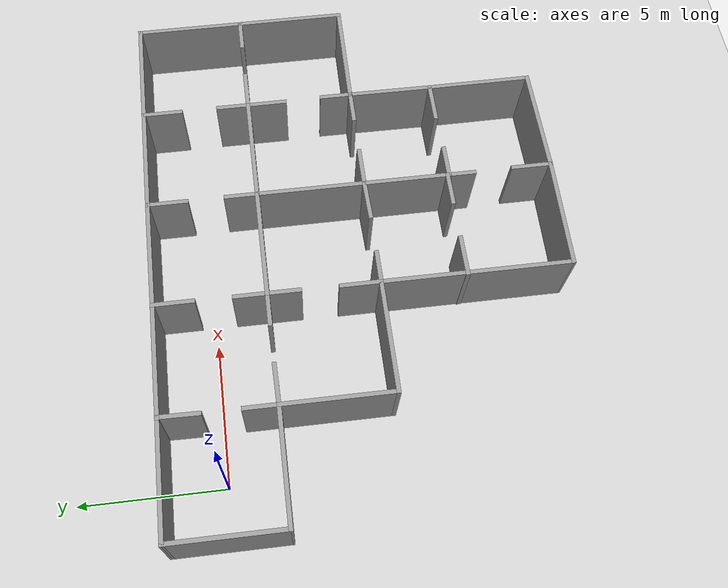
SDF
<sdf version="1.6">
 <world name="default">
  <light name="sun" type="directional">
   <pose>0 0 10 0 -0 0</pose>
   <diffuse>0.8 0.8 0.8 1</diffuse>
   <specular>0.2 0.2 0.2 1</specular>
   <attenuation>
    <range>1000</range>
    <constant>0.9</constant>
    <linear>0.01</linear>
    <quadratic>0.001</quadratic>
   </attenuation>
   <direction>-0.5 0.1 -0.9</direction>
  </light>
  <model name="ground_plane">
   <static>1</static>
   <link name="link">
    <collision name="collision">
     <geometry><plane><normal>0 0 1</normal><size>100 100</size></plane></geometry>
     <surface>
      <contact><collide_bitmask>65535</collide_bitmask></contact>
      <friction><ode><mu>100</mu><mu2>50</mu2></ode></friction>
     </surface>
    </collision>
    <visual name="visual">
     <cast_shadows>0</cast_shadows>
     <geometry><plane><normal>0 0 1</normal><size>100 100</size></plane></geometry>
     <material>
      <script><uri>file://media/materials/scripts/gazebo.material</uri><name>Gazebo/Grey</name></script>
     </material>
    </visual>
   </link>
  </model>
  <gravity>0 0 -9.8</gravity>
  <magnetic_field>6e-06 2.3e-05 -4.2e-05</magnetic_field>
  <atmosphere type="adiabatic"/>
  <physics name="default_physics" default="0" type="ode">
   <max_step_size>0.001</max_step_size>
   <real_time_factor>1</real_time_factor>
   <real_time_update_rate>600</real_time_update_rate>
  </physics>
  <scene><ambient>0.4 0.4 0.4 1</ambient><background>0.7 0.7 0.7 1</background><shadows>1</shadows></scene>
  <audio><device>default</device></audio>
  <spherical_coordinates>
   <surface_model>EARTH_WGS84</surface_model>
   <latitude_deg>0</latitude_deg>
   <longitude_deg>0</longitude_deg>
   <elevation>0</elevation>
   <heading_deg>0</heading_deg>
  </spherical_coordinates>
  <model name="unfinishedarea">
   <pose>7.69301 -5.2344 0 0 -0 0</pose>
   <link name="Wall_0">
    <collision name="Wall_0_Collision">
     <geometry><box><size>4 0.15 2.5</size></box></geometry>
     <pose>0 0 1.25 0 -0 0</pose>
    </collision>
    <visual name="Wall_0_Visual">
     <pose>0 0 1.25 0 -0 0</pose>
     <geometry><box><size>4 0.15 2.5</size></box></geometry>
     <material>
      <script><uri>file://media/materials/scripts/gazebo.material</uri><name>Gazebo/Grey</name></script>
      <ambient>1 1 1 1</ambient>
     </material>
     <meta><layer>0</layer></meta>
    </visual>
    <pose>-3.83005 7.17401 0 0 -0 0</pose>
   </link>
   <link name="Wall_1">
    <collision name="Wall_1_Collision">
     <geometry><box><size>3.97994 0.15 2.5</size></box></geometry>
     <pose>0 0 1.25 0 -0 0</pose>
    </collision>
    <visual name="Wall_1_Visual">
     <pose>0 0 1.25 0 -0 0</pose>
     <geometry><box><size>3.97994 0.15 2.5</size></box></geometry>
     <material>
      <script><uri>file://media/materials/scripts/gazebo.material</uri><name>Gazebo/Grey</name></script>
      <ambient>1 1 1 1</ambient>
     </material>
     <meta><layer>0</layer></meta>
    </visual>
    <pose>0.030012 7.18407 0 0 -0 0.005252</pose>
   </link>
   <link name="Wall_10">
    <collision name="Wall_10_Collision">
     <geometry><box><size>1.5 0.15 2.5</size></box></geometry>
     <pose>0 0 1.25 0 -0 0</pose>
    </collision>
    <visual name="Wall_10_Visual">
     <pose>0 0 1.25 0 -0 0</pose>
     <geometry><box><size>1.5 0.15 2.5</size></box></geometry>
     <material>
      <script><uri>file://media/materials/scripts/gazebo.material</uri><name>Gazebo/Grey</name></script>
      <ambient>1 1 1 1</ambient>
     </material>
     <meta><layer>0</layer></meta>
    </visual>
    <pose>-1.90505 0.169129 0 0 -0 1.5708</pose>
   </link>
   <link name="Wall_100">
    <collision name="Wall_100_Collision">
     <geometry><box><size>1.5 0.15 2.5</size></box></geometry>
     <pose>0 0 1.25 0 -0 0</pose>
    </collision>
    <visual name="Wall_100_Visual">
     <pose>0 0 1.25 0 -0 0</pose>
     <geometry><box><size>1.5 0.15 2.5</size></box></geometry>
     <material>
      <script><uri>file://media/materials/scripts/gazebo.material</uri><name>Gazebo/Grey</name></script>
      <ambient>1 1 1 1</ambient>
     </material>
     <meta><layer>0</layer></meta>
    </visual>
    <pose>5.11381 -3.4565 0 0 -0 0</pose>
   </link>
   <link name="Wall_12">
    <collision name="Wall_12_Collision">
     <geometry><box><size>1.5 0.15 2.5</size></box></geometry>
     <pose>0 0 1.25 0 -0 0</pose>
    </collision>
    <visual name="Wall_12_Visual">
     <pose>0 0 1.25 0 -0 0</pose>
     <geometry><box><size>1.5 0.15 2.5</size></box></geometry>
     <material>
      <script><uri>file://media/materials/scripts/gazebo.material</uri><name>Gazebo/Grey</name></script>
      <ambient>1 1 1 1</ambient>
     </material>
     <meta><layer>0</layer></meta>
    </visual>
    <pose>-5.08005 3.33407 0 0 -0 0.014898</pose>
   </link>
   <link name="Wall_14">
    <collision name="Wall_14_Collision">
     <geometry><box><size>1.25 0.15 2.5</size></box></geometry>
     <pose>0 0 1.25 0 -0 0</pose>
    </collision>
    <visual name="Wall_14_Visual">
     <pose>0 0 1.25 0 -0 0</pose>
     <geometry><box><size>1.25 0.15 2.5</size></box></geometry>
     <material>
      <script><uri>file://media/materials/scripts/gazebo.material</uri><name>Gazebo/Grey</name></script>
      <ambient>1 1 1 1</ambient>
     </material>
     <meta><layer>0</layer></meta>
    </visual>
    <pose>-5.75504 3.89413 0 0 -0 1.5708</pose>
   </link>
   <link name="Wall_16">
    <collision name="Wall_16_Collision">
     <geometry><box><size>1.48004 0.15 2.5</size></box></geometry>
     <pose>0 0 1.25 0 -0 0</pose>
    </collision>
    <visual name="Wall_16_Visual">
     <pose>0 0 1.25 0 -0 0</pose>
     <geometry><box><size>1.48004 0.15 2.5</size></box></geometry>
     <material>
      <script><uri>file://media/materials/scripts/gazebo.material</uri><name>Gazebo/Grey</name></script>
      <ambient>1 1 1 1</ambient>
     </material>
     <meta><layer>0</layer></meta>
    </visual>
    <pose>-5.74499 6.50907 0 0 -0 -1.58592</pose>
   </link>
   <link name="Wall_2">
    <collision name="Wall_2_Collision">
     <geometry><box><size>3.95977 0.15 2.5</size></box></geometry>
     <pose>0 0 1.25 0 -0 0</pose>
    </collision>
    <visual name="Wall_2_Visual">
     <pose>0 0 1.25 0 -0 0</pose>
     <geometry><box><size>3.95977 0.15 2.5</size></box></geometry>
     <material>
      <script><uri>file://media/materials/scripts/gazebo.material</uri><name>Gazebo/Grey</name></script>
      <ambient>1 1 1 1</ambient>
     </material>
     <meta><layer>0</layer></meta>
    </visual>
    <pose>3.84984 7.19413 0 0 -0 0</pose>
   </link>
   <link name="Wall_28">
    <collision name="Wall_28_Collision">
     <geometry><box><size>1.5 0.15 2.5</size></box></geometry>
     <pose>0 0 1.25 0 -0 0</pose>
    </collision>
    <visual name="Wall_28_Visual">
     <pose>0 0 1.25 0 -0 0</pose>
     <geometry><box><size>1.5 0.15 2.5</size></box></geometry>
     <material>
      <script><uri>file://media/materials/scripts/gazebo.material</uri><name>Gazebo/Grey</name></script>
      <ambient>1 1 1 1</ambient>
     </material>
     <meta><layer>0</layer></meta>
    </visual>
    <pose>-1.88493 6.49901 0 0 -0 -1.5708</pose>
   </link>
   <link name="Wall_30">
    <collision name="Wall_30_Collision">
     <geometry><box><size>1.25 0.15 2.5</size></box></geometry>
     <pose>0 0 1.25 0 -0 0</pose>
    </collision>
    <visual name="Wall_30_Visual">
     <pose>0 0 1.25 0 -0 0</pose>
     <geometry><box><size>1.25 0.15 2.5</size></box></geometry>
     <material>
      <script><uri>file://media/materials/scripts/gazebo.material</uri><name>Gazebo/Grey</name></script>
      <ambient>1 1 1 1</ambient>
     </material>
     <meta><layer>0</layer></meta>
    </visual>
    <pose>-1.89449 3.89587 0 0 -0 -1.5708</pose>
   </link>
   <link name="Wall_32">
    <collision name="Wall_32_Collision">
     <geometry><box><size>1.25 0.15 2.5</size></box></geometry>
     <pose>0 0 1.25 0 -0 0</pose>
    </collision>
    <visual name="Wall_32_Visual">
     <pose>0 0 1.25 0 -0 0</pose>
     <geometry><box><size>1.25 0.15 2.5</size></box></geometry>
     <material>
      <script><uri>file://media/materials/scripts/gazebo.material</uri><name>Gazebo/Grey</name></script>
      <ambient>1 1 1 1</ambient>
     </material>
     <meta><layer>0</layer></meta>
    </visual>
    <pose>-2.44449 3.34587 0 0 -0 3.14159</pose>
   </link>
   <link name="Wall_34">
    <collision name="Wall_34_Collision">
     <geometry><box><size>4 0.15 2.5</size></box></geometry>
     <pose>0 0 1.25 0 -0 0</pose>
    </collision>
    <visual name="Wall_34_Visual">
     <pose>0 0 1.25 0 -0 0</pose>
     <geometry><box><size>4 0.15 2.5</size></box></geometry>
     <material>
      <script><uri>file://media/materials/scripts/gazebo.material</uri><name>Gazebo/Grey</name></script>
      <ambient>1 1 1 1</ambient>
     </material>
     <meta><layer>0</layer></meta>
    </visual>
    <pose>0.030506 3.34587 0 0 -0 0</pose>
   </link>
   <link name="Wall_4">
    <collision name="Wall_4_Collision">
     <geometry><box><size>4.02017 0.15 2.5</size></box></geometry>
     <pose>0 0 1.25 0 -0 0</pose>
    </collision>
    <visual name="Wall_4_Visual">
     <pose>0 0 1.25 0 -0 0</pose>
     <geometry><box><size>4.02017 0.15 2.5</size></box></geometry>
     <material>
      <script><uri>file://media/materials/scripts/gazebo.material</uri><name>Gazebo/Grey</name></script>
      <ambient>1 1 1 1</ambient>
     </material>
     <meta><layer>0</layer></meta>
    </visual>
    <pose>-7.66999 7.18407 0 0 -0 3.1364</pose>
   </link>
   <link name="Wall_41">
    <collision name="Wall_41_Collision">
     <geometry><box><size>1.5 0.15 2.5</size></box></geometry>
     <pose>0 0 1.25 0 -0 0</pose>
    </collision>
    <visual name="Wall_41_Visual">
     <pose>0 0 1.25 0 -0 0</pose>
     <geometry><box><size>1.5 0.15 2.5</size></box></geometry>
     <material>
      <script><uri>file://media/materials/scripts/gazebo.material</uri><name>Gazebo/Grey</name></script>
      <ambient>1 1 1 1</ambient>
     </material>
     <meta><layer>0</layer></meta>
    </visual>
    <pose>1.94495 6.51913 0 0 -0 -1.5708</pose>
   </link>
   <link name="Wall_43">
    <collision name="Wall_43_Collision">
     <geometry><box><size>1.25 0.15 2.5</size></box></geometry>
     <pose>0 0 1.25 0 -0 0</pose>
    </collision>
    <visual name="Wall_43_Visual">
     <pose>0 0 1.25 0 -0 0</pose>
     <geometry><box><size>1.25 0.15 2.5</size></box></geometry>
     <material>
      <script><uri>file://media/materials/scripts/gazebo.material</uri><name>Gazebo/Grey</name></script>
      <ambient>1 1 1 1</ambient>
     </material>
     <meta><layer>0</layer></meta>
    </visual>
    <pose>1.95551 3.89587 0 0 -0 1.5708</pose>
   </link>
   <link name="Wall_48">
    <collision name="Wall_48_Collision">
     <geometry><box><size>1.5 0.15 2.5</size></box></geometry>
     <pose>0 0 1.25 0 -0 0</pose>
    </collision>
    <visual name="Wall_48_Visual">
     <pose>0 0 1.25 0 -0 0</pose>
     <geometry><box><size>1.5 0.15 2.5</size></box></geometry>
     <material>
      <script><uri>file://media/materials/scripts/gazebo.material</uri><name>Gazebo/Grey</name></script>
      <ambient>1 1 1 1</ambient>
     </material>
     <meta><layer>0</layer></meta>
    </visual>
    <pose>1.28051 -0.484015 0 0 -0 -3.1118</pose>
   </link>
   <link name="Wall_5">
    <collision name="Wall_5_Collision">
     <geometry><box><size>4 0.15 2.5</size></box></geometry>
     <pose>0 0 1.25 0 -0 0</pose>
    </collision>
    <visual name="Wall_5_Visual">
     <pose>0 0 1.25 0 -0 0</pose>
     <geometry><box><size>4 0.15 2.5</size></box></geometry>
     <material>
      <script><uri>file://media/materials/scripts/gazebo.material</uri><name>Gazebo/Grey</name></script>
      <ambient>1 1 1 1</ambient>
     </material>
     <meta><layer>0</layer></meta>
    </visual>
    <pose>-9.60505 5.26913 0 0 -0 -1.5708</pose>
   </link>
   <link name="Wall_50">
    <collision name="Wall_50_Collision">
     <geometry><box><size>1.25 0.15 2.5</size></box></geometry>
     <pose>0 0 1.25 0 -0 0</pose>
    </collision>
    <visual name="Wall_50_Visual">
     <pose>0 0 1.25 0 -0 0</pose>
     <geometry><box><size>1.25 0.15 2.5</size></box></geometry>
     <material>
      <script><uri>file://media/materials/scripts/gazebo.material</uri><name>Gazebo/Grey</name></script>
      <ambient>1 1 1 1</ambient>
     </material>
     <meta><layer>0</layer></meta>
    </visual>
    <pose>-1.35505 -0.505871 0 0 -0 0</pose>
   </link>
   <link name="Wall_52">
    <collision name="Wall_52_Collision">
     <geometry><box><size>1.25 0.15 2.5</size></box></geometry>
     <pose>0 0 1.25 0 -0 0</pose>
    </collision>
    <visual name="Wall_52_Visual">
     <pose>0 0 1.25 0 -0 0</pose>
     <geometry><box><size>1.25 0.15 2.5</size></box></geometry>
     <material>
      <script><uri>file://media/materials/scripts/gazebo.material</uri><name>Gazebo/Grey</name></script>
      <ambient>1 1 1 1</ambient>
     </material>
     <meta><layer>0</layer></meta>
    </visual>
    <pose>-1.89449 2.79587 0 0 -0 -1.5708</pose>
   </link>
   <link name="Wall_57">
    <collision name="Wall_57_Collision">
     <geometry><box><size>4 0.15 2.5</size></box></geometry>
     <pose>0 0 1.25 0 -0 0</pose>
    </collision>
    <visual name="Wall_57_Visual">
     <pose>0 0 1.25 0 -0 0</pose>
     <geometry><box><size>4 0.15 2.5</size></box></geometry>
     <material>
      <script><uri>file://media/materials/scripts/gazebo.material</uri><name>Gazebo/Grey</name></script>
      <ambient>1 1 1 1</ambient>
     </material>
     <meta><layer>0</layer></meta>
    </visual>
    <pose>7.67973 7.19413 0 0 -0 0</pose>
   </link>
   <link name="Wall_58">
    <collision name="Wall_58_Collision">
     <geometry><box><size>4 0.15 2.5</size></box></geometry>
     <pose>0 0 1.25 0 -0 0</pose>
    </collision>
    <visual name="Wall_58_Visual">
     <pose>0 0 1.25 0 -0 0</pose>
     <geometry><box><size>4 0.15 2.5</size></box></geometry>
     <material>
      <script><uri>file://media/materials/scripts/gazebo.material</uri><name>Gazebo/Grey</name></script>
      <ambient>1 1 1 1</ambient>
     </material>
     <meta><layer>0</layer></meta>
    </visual>
    <pose>9.60473 5.26913 0 0 -0 -1.5708</pose>
   </link>
   <link name="Wall_59">
    <collision name="Wall_59_Collision">
     <geometry><box><size>1.25 0.15 2.5</size></box></geometry>
     <pose>0 0 1.25 0 -0 0</pose>
    </collision>
    <visual name="Wall_59_Visual">
     <pose>0 0 1.25 0 -0 0</pose>
     <geometry><box><size>1.25 0.15 2.5</size></box></geometry>
     <material>
      <script><uri>file://media/materials/scripts/gazebo.material</uri><name>Gazebo/Grey</name></script>
      <ambient>1 1 1 1</ambient>
     </material>
     <meta><layer>0</layer></meta>
    </visual>
    <pose>9.05473 3.34413 0 0 -0 3.14159</pose>
   </link>
   <link name="Wall_6">
    <collision name="Wall_6_Collision">
     <geometry><box><size>4.00005 0.15 2.5</size></box></geometry>
     <pose>0 0 1.25 0 -0 0</pose>
    </collision>
    <visual name="Wall_6_Visual">
     <pose>0 0 1.25 0 -0 0</pose>
     <geometry><box><size>4.00005 0.15 2.5</size></box></geometry>
     <material>
      <script><uri>file://media/materials/scripts/gazebo.material</uri><name>Gazebo/Grey</name></script>
      <ambient>1 1 1 1</ambient>
     </material>
     <meta><layer>0</layer></meta>
    </visual>
    <pose>-7.68004 3.33407 0 0 -0 -0.005224</pose>
   </link>
   <link name="Wall_61">
    <collision name="Wall_61_Collision">
     <geometry><box><size>1.25 0.15 2.5</size></box></geometry>
     <pose>0 0 1.25 0 -0 0</pose>
    </collision>
    <visual name="Wall_61_Visual">
     <pose>0 0 1.25 0 -0 0</pose>
     <geometry><box><size>1.25 0.15 2.5</size></box></geometry>
     <material>
      <script><uri>file://media/materials/scripts/gazebo.material</uri><name>Gazebo/Grey</name></script>
      <ambient>1 1 1 1</ambient>
     </material>
     <meta><layer>0</layer></meta>
    </visual>
    <pose>5.76528 3.89587 0 0 -0 1.5708</pose>
   </link>
   <link name="Wall_63">
    <collision name="Wall_63_Collision">
     <geometry><box><size>1.5 0.15 2.5</size></box></geometry>
     <pose>0 0 1.25 0 -0 0</pose>
    </collision>
    <visual name="Wall_63_Visual">
     <pose>0 0 1.25 0 -0 0</pose>
     <geometry><box><size>1.5 0.15 2.5</size></box></geometry>
     <material>
      <script><uri>file://media/materials/scripts/gazebo.material</uri><name>Gazebo/Grey</name></script>
      <ambient>1 1 1 1</ambient>
     </material>
     <meta><layer>0</layer></meta>
    </visual>
    <pose>5.75473 6.51913 0 0 -0 -1.5708</pose>
   </link>
   <link name="Wall_65">
    <collision name="Wall_65_Collision">
     <geometry><box><size>1.5 0.15 2.5</size></box></geometry>
     <pose>0 0 1.25 0 -0 0</pose>
    </collision>
    <visual name="Wall_65_Visual">
     <pose>0 0 1.25 0 -0 0</pose>
     <geometry><box><size>1.5 0.15 2.5</size></box></geometry>
     <material>
      <script><uri>file://media/materials/scripts/gazebo.material</uri><name>Gazebo/Grey</name></script>
      <ambient>1 1 1 1</ambient>
     </material>
     <meta><layer>0</layer></meta>
    </visual>
    <pose>6.44028 3.34587 0 0 -0 0</pose>
   </link>
   <link name="Wall_67">
    <collision name="Wall_67_Collision">
     <geometry><box><size>4 0.15 2.5</size></box></geometry>
     <pose>0 0 1.25 0 -0 0</pose>
    </collision>
    <visual name="Wall_67_Visual">
     <pose>0 0 1.25 0 -0 0</pose>
     <geometry><box><size>4 0.15 2.5</size></box></geometry>
     <material>
      <script><uri>file://media/materials/scripts/gazebo.material</uri><name>Gazebo/Grey</name></script>
      <ambient>1 1 1 1</ambient>
     </material>
     <meta><layer>0</layer></meta>
    </visual>
    <pose>9.60473 1.41913 0 0 -0 -1.5708</pose>
   </link>
   <link name="Wall_68">
    <collision name="Wall_68_Collision">
     <geometry><box><size>3.94922 0.15 2.5</size></box></geometry>
     <pose>0 0 1.25 0 -0 0</pose>
    </collision>
    <visual name="Wall_68_Visual">
     <pose>0 0 1.25 0 -0 0</pose>
     <geometry><box><size>3.94922 0.15 2.5</size></box></geometry>
     <material>
      <script><uri>file://media/materials/scripts/gazebo.material</uri><name>Gazebo/Grey</name></script>
      <ambient>1 1 1 1</ambient>
     </material>
     <meta><layer>0</layer></meta>
    </visual>
    <pose>7.70512 -0.484886 0 0 -0 3.13055</pose>
   </link>
   <link name="Wall_70">
    <collision name="Wall_70_Collision">
     <geometry><box><size>1.5 0.15 2.5</size></box></geometry>
     <pose>0 0 1.25 0 -0 0</pose>
    </collision>
    <visual name="Wall_70_Visual">
     <pose>0 0 1.25 0 -0 0</pose>
     <geometry><box><size>1.5 0.15 2.5</size></box></geometry>
     <material>
      <script><uri>file://media/materials/scripts/gazebo.material</uri><name>Gazebo/Grey</name></script>
      <ambient>1 1 1 1</ambient>
     </material>
     <meta><layer>0</layer></meta>
    </visual>
    <pose>5.76528 2.67087 0 0 -0 -1.5708</pose>
   </link>
   <link name="Wall_72">
    <collision name="Wall_72_Collision">
     <geometry><box><size>1.20977 0.15 2.5</size></box></geometry>
     <pose>0 0 1.25 0 -0 0</pose>
    </collision>
    <visual name="Wall_72_Visual">
     <pose>0 0 1.25 0 -0 0</pose>
     <geometry><box><size>1.20977 0.15 2.5</size></box></geometry>
     <material>
      <script><uri>file://media/materials/scripts/gazebo.material</uri><name>Gazebo/Grey</name></script>
      <ambient>1 1 1 1</ambient>
     </material>
     <meta><layer>0</layer></meta>
    </visual>
    <pose>5.80551 0.065986 0 0 -0 1.5708</pose>
   </link>
   <link name="Wall_74">
    <collision name="Wall_74_Collision">
     <geometry><box><size>3.95977 0.15 2.5</size></box></geometry>
     <pose>0 0 1.25 0 -0 0</pose>
    </collision>
    <visual name="Wall_74_Visual">
     <pose>0 0 1.25 0 -0 0</pose>
     <geometry><box><size>3.95977 0.15 2.5</size></box></geometry>
     <material>
      <script><uri>file://media/materials/scripts/gazebo.material</uri><name>Gazebo/Grey</name></script>
      <ambient>1 1 1 1</ambient>
     </material>
     <meta><layer>0</layer></meta>
    </visual>
    <pose>1.95551 1.44099 0 0 -0 -1.5708</pose>
   </link>
   <link name="Wall_76">
    <collision name="Wall_76_Collision">
     <geometry><box><size>1.5 0.15 2.5</size></box></geometry>
     <pose>0 0 1.25 0 -0 0</pose>
    </collision>
    <visual name="Wall_76_Visual">
     <pose>0 0 1.25 0 -0 0</pose>
     <geometry><box><size>1.5 0.15 2.5</size></box></geometry>
     <material>
      <script><uri>file://media/materials/scripts/gazebo.material</uri><name>Gazebo/Grey</name></script>
      <ambient>1 1 1 1</ambient>
     </material>
     <meta><layer>0</layer></meta>
    </visual>
    <pose>2.63051 -0.463901 0 0 -0 0</pose>
   </link>
   <link name="Wall_78">
    <collision name="Wall_78_Collision">
     <geometry><box><size>1.25 0.15 2.5</size></box></geometry>
     <pose>0 0 1.25 0 -0 0</pose>
    </collision>
    <visual name="Wall_78_Visual">
     <pose>0 0 1.25 0 -0 0</pose>
     <geometry><box><size>1.25 0.15 2.5</size></box></geometry>
     <material>
      <script><uri>file://media/materials/scripts/gazebo.material</uri><name>Gazebo/Grey</name></script>
      <ambient>1 1 1 1</ambient>
     </material>
     <meta><layer>0</layer></meta>
    </visual>
    <pose>5.25551 -0.463901 0 0 -0 3.14159</pose>
   </link>
   <link name="Wall_8">
    <collision name="Wall_8_Collision">
     <geometry><box><size>3.97989 0.15 2.5</size></box></geometry>
     <pose>0 0 1.25 0 -0 0</pose>
    </collision>
    <visual name="Wall_8_Visual">
     <pose>0 0 1.25 0 -0 0</pose>
     <geometry><box><size>3.97989 0.15 2.5</size></box></geometry>
     <material>
      <script><uri>file://media/materials/scripts/gazebo.material</uri><name>Gazebo/Grey</name></script>
      <ambient>1 1 1 1</ambient>
     </material>
     <meta><layer>0</layer></meta>
    </visual>
    <pose>-5.75504 1.40907 0 0 -0 -1.5708</pose>
   </link>
   <link name="Wall_80">
    <collision name="Wall_80_Collision">
     <geometry><box><size>3.95977 0.15 2.5</size></box></geometry>
     <pose>0 0 1.25 0 -0 0</pose>
    </collision>
    <visual name="Wall_80_Visual">
     <pose>0 0 1.25 0 -0 0</pose>
     <geometry><box><size>3.95977 0.15 2.5</size></box></geometry>
     <material>
      <script><uri>file://media/materials/scripts/gazebo.material</uri><name>Gazebo/Grey</name></script>
      <ambient>1 1 1 1</ambient>
     </material>
     <meta><layer>0</layer></meta>
    </visual>
    <pose>3.86039 3.34587 0 0 -0 0</pose>
   </link>
   <link name="Wall_82">
    <collision name="Wall_82_Collision">
     <geometry><box><size>3.14299 0.15 2.5</size></box></geometry>
     <pose>0 0 1.25 0 -0 0</pose>
    </collision>
    <visual name="Wall_82_Visual">
     <pose>0 0 1.25 0 -0 0</pose>
     <geometry><box><size>3.14299 0.15 2.5</size></box></geometry>
     <material>
      <script><uri>file://media/materials/scripts/gazebo.material</uri><name>Gazebo/Grey</name></script>
      <ambient>1 1 1 1</ambient>
     </material>
     <meta><layer>0</layer></meta>
    </visual>
    <pose>1.95551 -1.9604 0 0 -0 -1.5708</pose>
   </link>
   <link name="Wall_84">
    <collision name="Wall_84_Collision">
     <geometry><box><size>3.14264 0.15 2.5</size></box></geometry>
     <pose>0 0 1.25 0 -0 0</pose>
    </collision>
    <visual name="Wall_84_Visual">
     <pose>0 0 1.25 0 -0 0</pose>
     <geometry><box><size>3.14264 0.15 2.5</size></box></geometry>
     <material>
      <script><uri>file://media/materials/scripts/gazebo.material</uri><name>Gazebo/Grey</name></script>
      <ambient>1 1 1 1</ambient>
     </material>
     <meta><layer>0</layer></meta>
    </visual>
    <pose>5.79716 -1.9602 0 0 -0 -1.57637</pose>
   </link>
   <link name="Wall_85">
    <collision name="Wall_85_Collision">
     <geometry><box><size>3.85744 0.15 2.5</size></box></geometry>
     <pose>0 0 1.25 0 -0 0</pose>
    </collision>
    <visual name="Wall_85_Visual">
     <pose>0 0 1.25 0 -0 0</pose>
     <geometry><box><size>3.85744 0.15 2.5</size></box></geometry>
     <material>
      <script><uri>file://media/materials/scripts/gazebo.material</uri><name>Gazebo/Grey</name></script>
      <ambient>1 1 1 1</ambient>
     </material>
     <meta><layer>0</layer></meta>
    </visual>
    <pose>5.79716 -5.3102 0 0 -0 -1.56629</pose>
   </link>
   <link name="Wall_86">
    <collision name="Wall_86_Collision">
     <geometry><box><size>3.97011 0.15 2.5</size></box></geometry>
     <pose>0 0 1.25 0 -0 0</pose>
    </collision>
    <visual name="Wall_86_Visual">
     <pose>0 0 1.25 0 -0 0</pose>
     <geometry><box><size>3.97011 0.15 2.5</size></box></geometry>
     <material>
      <script><uri>file://media/materials/scripts/gazebo.material</uri><name>Gazebo/Grey</name></script>
      <ambient>1 1 1 1</ambient>
     </material>
     <meta><layer>0</layer></meta>
    </visual>
    <pose>3.89551 -7.17838 0 0 -0 -3.13401</pose>
   </link>
   <link name="Wall_87">
    <collision name="Wall_87_Collision">
     <geometry><box><size>1.5 0.15 2.5</size></box></geometry>
     <pose>0 0 1.25 0 -0 0</pose>
    </collision>
    <visual name="Wall_87_Visual">
     <pose>0 0 1.25 0 -0 0</pose>
     <geometry><box><size>1.5 0.15 2.5</size></box></geometry>
     <material>
      <script><uri>file://media/materials/scripts/gazebo.material</uri><name>Gazebo/Grey</name></script>
      <ambient>1 1 1 1</ambient>
     </material>
     <meta><layer>0</layer></meta>
    </visual>
    <pose>1.98551 -6.51786 0 0 -0 1.5708</pose>
   </link>
   <link name="Wall_89">
    <collision name="Wall_89_Collision">
     <geometry><box><size>1.10701 0.15 2.5</size></box></geometry>
     <pose>0 0 1.25 0 -0 0</pose>
    </collision>
    <visual name="Wall_89_Visual">
     <pose>0 0 1.25 0 -0 0</pose>
     <geometry><box><size>1.10701 0.15 2.5</size></box></geometry>
     <material>
      <script><uri>file://media/materials/scripts/gazebo.material</uri><name>Gazebo/Grey</name></script>
      <ambient>1 1 1 1</ambient>
     </material>
     <meta><layer>0</layer></meta>
    </visual>
    <pose>1.95551 -3.9354 0 0 -0 -1.5708</pose>
   </link>
   <link name="Wall_9">
    <collision name="Wall_9_Collision">
     <geometry><box><size>4 0.15 2.5</size></box></geometry>
     <pose>0 0 1.25 0 -0 0</pose>
    </collision>
    <visual name="Wall_9_Visual">
     <pose>0 0 1.25 0 -0 0</pose>
     <geometry><box><size>4 0.15 2.5</size></box></geometry>
     <material>
      <script><uri>file://media/materials/scripts/gazebo.material</uri><name>Gazebo/Grey</name></script>
      <ambient>1 1 1 1</ambient>
     </material>
     <meta><layer>0</layer></meta>
    </visual>
    <pose>-3.83005 -0.505871 0 0 -0 0</pose>
   </link>
   <link name="Wall_91">
    <collision name="Wall_91_Collision">
     <geometry><box><size>4.04153 0.15 2.5</size></box></geometry>
     <pose>0 0 1.25 0 -0 0</pose>
    </collision>
    <visual name="Wall_91_Visual">
     <pose>0 0 1.25 0 -0 0</pose>
     <geometry><box><size>4.04153 0.15 2.5</size></box></geometry>
     <material>
      <script><uri>file://media/materials/scripts/gazebo.material</uri><name>Gazebo/Grey</name></script>
      <ambient>1 1 1 1</ambient>
     </material>
     <meta><layer>0</layer></meta>
    </visual>
    <pose>0.040233 -7.14937 0 0 -0 3.11924</pose>
   </link>
   <link name="Wall_92">
    <collision name="Wall_92_Collision">
     <geometry><box><size>6.75 0.15 2.5</size></box></geometry>
     <pose>0 0 1.25 0 -0 0</pose>
    </collision>
    <visual name="Wall_92_Visual">
     <pose>0 0 1.25 0 -0 0</pose>
     <geometry><box><size>6.75 0.15 2.5</size></box></geometry>
     <material>
      <script><uri>file://media/materials/scripts/gazebo.material</uri><name>Gazebo/Grey</name></script>
      <ambient>1 1 1 1</ambient>
     </material>
     <meta><layer>0</layer></meta>
    </visual>
    <pose>-1.90505 -3.80587 0 0 -0 1.5708</pose>
   </link>
   <link name="Wall_94">
    <collision name="Wall_94_Collision">
     <geometry><box><size>1.5 0.15 2.5</size></box></geometry>
     <pose>0 0 1.25 0 -0 0</pose>
    </collision>
    <visual name="Wall_94_Visual">
     <pose>0 0 1.25 0 -0 0</pose>
     <geometry><box><size>1.5 0.15 2.5</size></box></geometry>
     <material>
      <script><uri>file://media/materials/scripts/gazebo.material</uri><name>Gazebo/Grey</name></script>
      <ambient>1 1 1 1</ambient>
     </material>
     <meta><layer>0</layer></meta>
    </visual>
    <pose>-1.25432 -3.4565 0 0 -0 0</pose>
   </link>
   <link name="Wall_96">
    <collision name="Wall_96_Collision">
     <geometry><box><size>1.2753 0.15 2.5</size></box></geometry>
     <pose>0 0 1.25 0 -0 0</pose>
    </collision>
    <visual name="Wall_96_Visual">
     <pose>0 0 1.25 0 -0 0</pose>
     <geometry><box><size>1.2753 0.15 2.5</size></box></geometry>
     <material>
      <script><uri>file://media/materials/scripts/gazebo.material</uri><name>Gazebo/Grey</name></script>
      <ambient>1 1 1 1</ambient>
     </material>
     <meta><layer>0</layer></meta>
    </visual>
    <pose>1.39286 -3.4567 0 0 -0 -0.000355</pose>
   </link>
   <link name="Wall_98">
    <collision name="Wall_98_Collision">
     <geometry><box><size>1.25 0.15 2.5</size></box></geometry>
     <pose>0 0 1.25 0 -0 0</pose>
    </collision>
    <visual name="Wall_98_Visual">
     <pose>0 0 1.25 0 -0 0</pose>
     <geometry><box><size>1.25 0.15 2.5</size></box></geometry>
     <material>
      <script><uri>file://media/materials/scripts/gazebo.material</uri><name>Gazebo/Grey</name></script>
      <ambient>1 1 1 1</ambient>
     </material>
     <meta><layer>0</layer></meta>
    </visual>
    <pose>2.50551 -3.5104 0 0 -0 0</pose>
   </link>
   <static>1</static>
  </model>
 </world>
</sdf>
